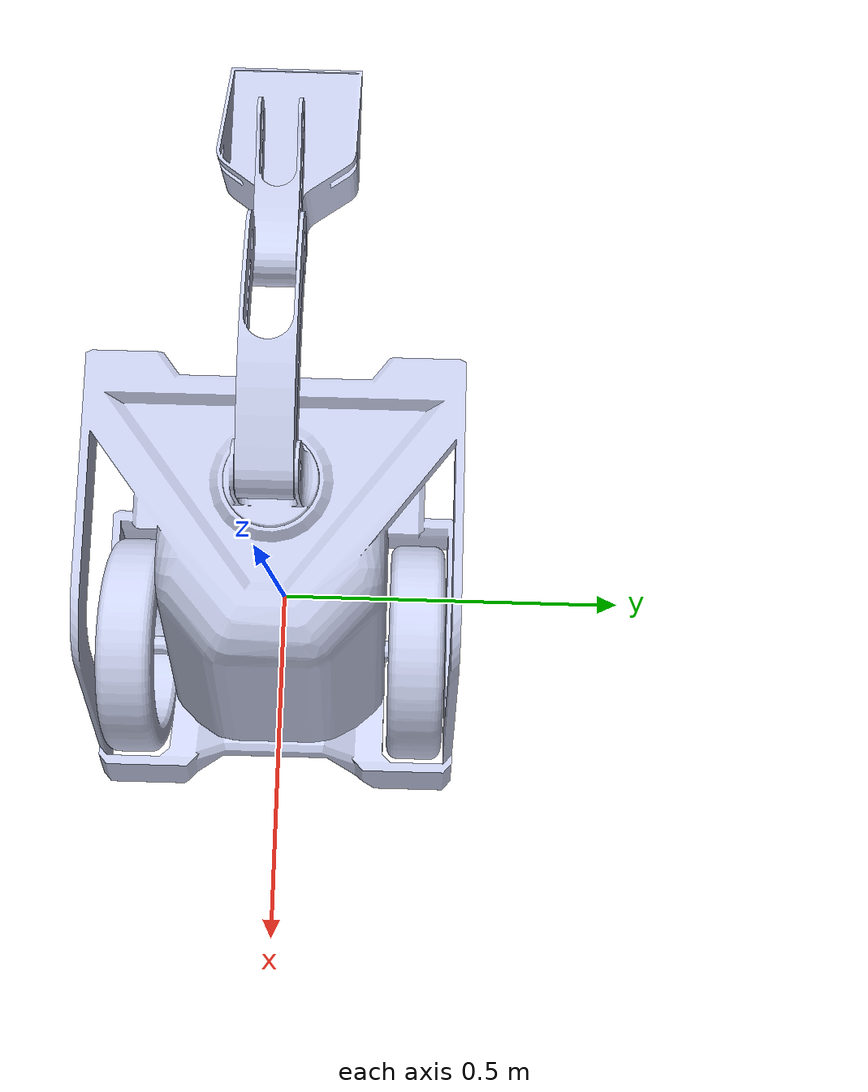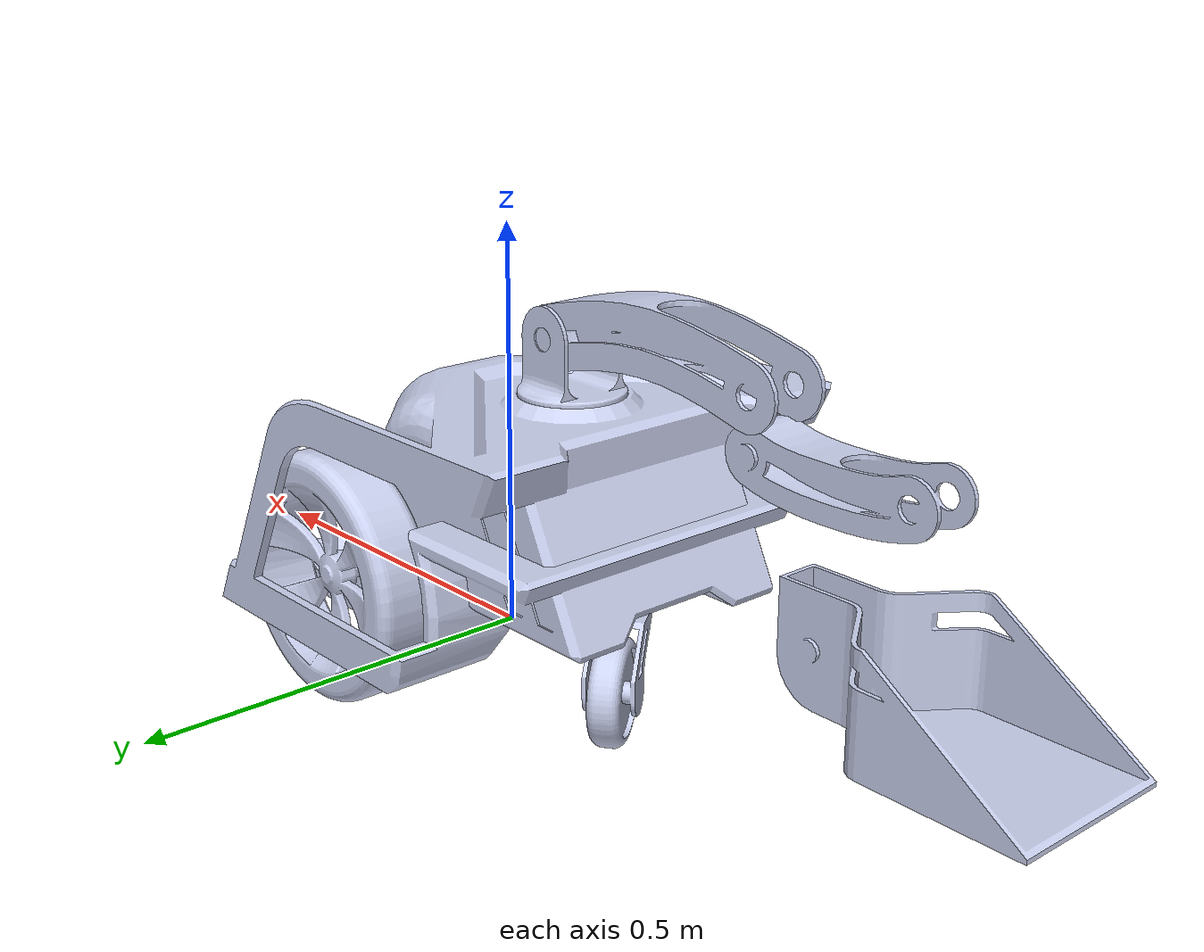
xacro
<?xml version="1.0" ?>
<robot
  name="mobilearm" xmlns:xacro="http://ros.org/wiki/xacro">

<!-- # Add this before base link -->
  <link name="dummy_link"></link>

  <link
    name="base_link">
    <inertial>
      <origin
        xyz="-0.0454480308412735 0.000582838465330818 0.177791113901499"
        rpy="0 0 0" />
      <mass
        value="34.7575387156894" />
      <inertia
        ixx="0.627751634772556"
        ixy="4.08813517851506E-05"
        ixz="0.119765812637325"
        iyy="0.784345948664716"
        iyz="-1.57075538298435E-05"
        izz="0.966494635772187" />
    </inertial>
    <visual>
      <origin
        xyz="0 0 0"
        rpy="0 0 0" />
      <geometry>
        <mesh
          filename="package://mobilearm/meshes/base_link.STL" />
      </geometry>
      <material
        name="">
        <color
          rgba="0.792156862745098 0.819607843137255 0.933333333333333 1" />
      </material>
    </visual>
    <collision>
      <origin
        xyz="0 0 0"
        rpy="0 0 0" />
      <geometry>
        <mesh
          filename="package://mobilearm/meshes/base_link.STL" />
      </geometry>
    </collision>
  </link>

<!-- # Add this after base link -->
  <joint name="dummy_joint" type="fixed">
      <origin rpy="0 0 0" xyz="0 0 0" />
      <parent link="dummy_link"/>
      <child link="base_link"/>
  </joint>

  <link
    name="fl_wheel_link">
    <inertial>
      <origin
        xyz="-0.0271807588753444 -4.14165229889463E-16 -1.31838984174237E-16"
        rpy="0 0 0" />
      <mass
        value="2.63203270429412" />
      <inertia
        ixx="0.0437698846226494"
        ixy="-2.80781157450558E-17"
        ixz="-1.18831814513634E-17"
        iyy="0.0230243622311288"
        iyz="-1.1555713157364E-18"
        izz="0.0230243622311289" />
    </inertial>
    <visual>
      <origin
        xyz="0 0 0"
        rpy="0 0 0" />
      <geometry>
        <mesh
          filename="package://mobilearm/meshes/fl_wheel_link.STL" />
      </geometry>
      <material
        name="">
        <color
          rgba="0.792156862745098 0.819607843137255 0.933333333333333 1" />
      </material>
    </visual>
    <collision>
      <origin
        xyz="0 0 0"
        rpy="0 0 0" />
      <geometry>
        <mesh
          filename="package://mobilearm/meshes/fl_wheel_link.STL" />
      </geometry>
    </collision>
  </link>
  <joint
    name="fl_wheel_joint"
    type="continuous">
    <origin
      xyz="0.085542 0.17267 0.088796"
      rpy="1.5708 0 -1.5708" />
    <parent
      link="base_link" />
    <child
      link="fl_wheel_link" />
    <axis
      xyz="-1 0 0" />
  </joint>
  <link
    name="fr_wheel_link">
    <inertial>
      <origin
        xyz="-2.42861286636753E-16 3.963843142607E-16 0.0271807588753444"
        rpy="0 0 0" />
      <mass
        value="2.63203270429411" />
      <inertia
        ixx="0.0230243622311288"
        ixy="8.23317679092403E-17"
        ixz="1.25521031584601E-17"
        iyy="0.0230243622311288"
        iyz="-2.66928154962759E-17"
        izz="0.0437698846226493" />
    </inertial>
    <visual>
      <origin
        xyz="0 0 0"
        rpy="0 0 0" />
      <geometry>
        <mesh
          filename="package://mobilearm/meshes/fr_wheel_link.STL" />
      </geometry>
      <material
        name="">
        <color
          rgba="0.792156862745098 0.819607843137255 0.933333333333333 1" />
      </material>
    </visual>
    <collision>
      <origin
        xyz="0 0 0"
        rpy="0 0 0" />
      <geometry>
        <mesh
          filename="package://mobilearm/meshes/fr_wheel_link.STL" />
      </geometry>
    </collision>
  </link>
  <joint
    name="fr_wheel_joint"
    type="continuous">
    <origin
      xyz="0.0855424170995859 -0.171498454179958 0.0887956872982283"
      rpy="1.5707963267949 0 0" />
    <parent
      link="base_link" />
    <child
      link="fr_wheel_link" />
    <axis
      xyz="0 0 1" />
  </joint>
  <link
    name="caster_steering_link">
    <inertial>
      <origin
        xyz="-0.0155539530214489 -0.050211621486083 -0.0218719177774571"
        rpy="0 0 0" />
      <mass
        value="0.104896059762262" />
      <inertia
        ixx="0.000245449516358399"
        ixy="-5.48661722963356E-05"
        ixz="-1.15978435736956E-05"
        iyy="0.000109853368900026"
        iyz="-7.71526317183975E-05"
        izz="0.00023738833462133" />
    </inertial>
    <visual>
      <origin
        xyz="0 0 0"
        rpy="0 0 0" />
      <geometry>
        <mesh
          filename="package://mobilearm/meshes/caster_steering_link.STL" />
      </geometry>
      <material
        name="">
        <color
          rgba="0.792156862745098 0.819607843137255 0.933333333333333 1" />
      </material>
    </visual>
    <collision>
      <origin
        xyz="0 0 0"
        rpy="0 0 0" />
      <geometry>
        <mesh
          filename="package://mobilearm/meshes/caster_steering_link.STL" />
      </geometry>
    </collision>
  </link>
  <joint
    name="caster_steering_joint"
    type="continuous">
    <origin
      xyz="-0.204564404538145 0.000586545820041112 0.092302154967211"
      rpy="1.5707963267949 0 0" />
    <parent
      link="base_link" />
    <child
      link="caster_steering_link" />
    <axis
      xyz="0 1 0" />
  </joint>
  <link
    name="caster_wheel_link">
    <inertial>
      <origin
        xyz="2.22044604925031E-16 6.93889390390723E-17 2.46330733588707E-16"
        rpy="0 0 0" />
      <mass
        value="0.342625566923817" />
      <inertia
        ixx="0.000635022853102609"
        ixy="-1.22660123963122E-19"
        ixz="-0.000166314971068249"
        iyy="0.000401151285704393"
        iyz="1.37432861193586E-19"
        izz="0.000519424190397995" />
    </inertial>
    <visual>
      <origin
        xyz="0 0 0"
        rpy="0 0 0" />
      <geometry>
        <mesh
          filename="package://mobilearm/meshes/caster_wheel_link.STL" />
      </geometry>
      <material
        name="">
        <color
          rgba="0.792156862745098 0.819607843137255 0.933333333333333 1" />
      </material>
    </visual>
    <collision>
      <origin
        xyz="0 0 0"
        rpy="0 0 0" />
      <geometry>
        <mesh
          filename="package://mobilearm/meshes/caster_wheel_link.STL" />
      </geometry>
    </collision>
  </link>
  <joint
    name="caster_wheel_joint"
    type="continuous">
    <origin
      xyz="-0.0281460805399568 -0.0920750000000002 -0.039578926236865"
      rpy="0 0 0" />
    <parent
      link="caster_steering_link" />
    <child
      link="caster_wheel_link" />
    <axis
      xyz="-0.814944954891572 0 0.579538368442309" />
  </joint>
  <link
    name="arm_base_link">
    <inertial>
      <origin
        xyz="-2.57835146586505E-05 0.0132552322064937 5.86643492230324E-07"
        rpy="0 0 0" />
      <mass
        value="0.306924619909659" />
      <inertia
        ixx="0.00056423275740933"
        ixy="4.77385932719403E-07"
        ixz="-2.25328189717659E-06"
        iyy="0.00062447672477494"
        iyz="-1.10419626933994E-08"
        izz="0.000464887899027737" />
    </inertial>
    <visual>
      <origin
        xyz="0 0 0"
        rpy="0 0 0" />
      <geometry>
        <mesh
          filename="package://mobilearm/meshes/arm_base_link.STL" />
      </geometry>
      <material
        name="">
        <color
          rgba="0.792156862745098 0.819607843137255 0.933333333333333 1" />
      </material>
    </visual>
    <collision>
      <origin
        xyz="0 0 0"
        rpy="0 0 0" />
      <geometry>
        <mesh
          filename="package://mobilearm/meshes/arm_base_link.STL" />
      </geometry>
    </collision>
  </link>
  <joint
    name="arm_base_joint"
    type="revolute">
    <origin
      xyz="-0.11627 0.00058655 0.31469"
      rpy="1.5708 0 0" />
    <parent
      link="base_link" />
    <child
      link="arm_base_link" />
    <axis
      xyz="0 1 0" />
    <limit
      lower="-3.14"
      upper="3.14"
      effort="10"
      velocity="100" />
  </joint>
  <link
    name="arm_shoulder_link">
    <inertial>
      <origin
        xyz="-0.106854313845036 -0.0109685060993276 0.0418021223568449"
        rpy="0 0 0" />
      <mass
        value="0.425762912929472" />
      <inertia
        ixx="0.000865085703504448"
        ixy="-0.000758214690915897"
        ixz="9.06931471576522E-05"
        iyy="0.00472008557416393"
        iyz="1.71853825871218E-05"
        izz="0.0048642302134541" />
    </inertial>
    <visual>
      <origin
        xyz="0 0 0"
        rpy="0 0 0" />
      <geometry>
        <mesh
          filename="package://mobilearm/meshes/arm_shoulder_link.STL" />
      </geometry>
      <material
        name="">
        <color
          rgba="0.792156862745098 0.819607843137255 0.933333333333333 1" />
      </material>
    </visual>
    <collision>
      <origin
        xyz="0 0 0"
        rpy="0 0 0" />
      <geometry>
        <mesh
          filename="package://mobilearm/meshes/arm_shoulder_link.STL" />
      </geometry>
    </collision>
  </link>
  <joint
    name="arm_shoulder_joint"
    type="revolute">
    <origin
      xyz="0.0003775 0.07366 -0.039389"
      rpy="0 0 0" />
    <parent
      link="arm_base_link" />
    <child
      link="arm_shoulder_link" />
    <axis
      xyz="-0.022661 0 -0.99974" />
    <limit
      lower="-3.14"
      upper="3.14"
      effort="10"
      velocity="100" />
  </joint>
  <link
    name="arm_elbow_link">
    <inertial>
      <origin
        xyz="-0.0233393800217799 -0.0661489560408209 0.0335575281983519"
        rpy="0 0 0" />
      <mass
        value="0.216274856466169" />
      <inertia
        ixx="0.00110520290130942"
        ixy="-0.000383701304411164"
        ixz="3.63584104531167E-06"
        iyy="0.00041365723025759"
        iyz="8.69725645741524E-06"
        izz="0.00126552451542636" />
    </inertial>
    <visual>
      <origin
        xyz="0 0 0"
        rpy="0 0 0" />
      <geometry>
        <mesh
          filename="package://mobilearm/meshes/arm_elbow_link.STL" />
      </geometry>
      <material
        name="">
        <color
          rgba="0.792156862745098 0.819607843137255 0.933333333333333 1" />
      </material>
    </visual>
    <collision>
      <origin
        xyz="0 0 0"
        rpy="0 0 0" />
      <geometry>
        <mesh
          filename="package://mobilearm/meshes/arm_elbow_link.STL" />
      </geometry>
    </collision>
  </link>
  <joint
    name="arm_elbow_joint"
    type="revolute">
    <origin
      xyz="-0.2973 -0.066203 0.013091"
      rpy="0 0 0" />
    <parent
      link="arm_shoulder_link" />
    <child
      link="arm_elbow_link" />
    <axis
      xyz="-0.022661 0 -0.99974" />
    <limit
      lower="-3.14"
      upper="3.14"
      effort="10"
      velocity="100" />
  </joint>
  <link
    name="arm_wrist_link">
    <inertial>
      <origin
        xyz="-0.114340241556196 0.0502692868264429 0.0305389440883377"
        rpy="0 0 0" />
      <mass
        value="0.670549259795526" />
      <inertia
        ixx="0.00428366558965856"
        ixy="0.00216312207223584"
        ixz="7.15488129621559E-05"
        iyy="0.0083495598791866"
        iyz="-4.90317863900001E-05"
        izz="0.00743855920842014" />
    </inertial>
    <visual>
      <origin
        xyz="0 0 0"
        rpy="0 0 0" />
      <geometry>
        <mesh
          filename="package://mobilearm/meshes/arm_wrist_link.STL" />
      </geometry>
      <material
        name="">
        <color
          rgba="0.792156862745098 0.819607843137255 0.933333333333333 1" />
      </material>
    </visual>
    <collision>
      <origin
        xyz="0 0 0"
        rpy="0 0 0" />
      <geometry>
        <mesh
          filename="package://mobilearm/meshes/arm_wrist_link.STL" />
      </geometry>
    </collision>
  </link>
  <joint
    name="arm_wrist_joint"
    type="revolute">
    <origin
      xyz="-0.087089 -0.18355 0.0070554"
      rpy="0 0 0" />
    <parent
      link="arm_elbow_link" />
    <child
      link="arm_wrist_link" />
    <axis
      xyz="-0.022661 0 -0.99974" />
    <limit
      lower="-3.14"
      upper="3.14"
      effort="10"
      velocity="100" />
  </joint>

  <ros2_control name="GazeboSystem" type="system">
    <hardware>
        <plugin>gazebo_ros2_control/GazeboSystem</plugin>
    </hardware>

  <!-- # Velocity Controllers -->
  <joint name="fl_wheel_joint">
      <command_interface name="velocity">
          <param name="min">-5.0</param>
          <param name="max">5.0</param>
      </command_interface>
      <state_interface name="position"/>
      <state_interface name="velocity"/>
  </joint>

  <joint name="fr_wheel_joint">
      <command_interface name="velocity">
          <param name="min">-5.0</param>
          <param name="max">5.0</param>
      </command_interface>
      <state_interface name="position"/>
      <state_interface name="velocity"/>
  </joint>

 <joint name="arm_base_joint">
      <command_interface name="velocity">
          <param name="min">-5.0</param>
          <param name="max">5.0</param>
      </command_interface>
      <state_interface name="position"/>
      <state_interface name="velocity"/>
  </joint>

  <joint name="arm_shoulder_joint">
      <command_interface name="velocity">
          <param name="min">-5.0</param>
          <param name="max">5.0</param>
      </command_interface>
      <state_interface name="position"/>
      <state_interface name="velocity"/>
  </joint>

 <joint name="arm_elbow_joint">
      <command_interface name="velocity">
          <param name="min">-5.0</param>
          <param name="max">5.0</param>
      </command_interface>
      <state_interface name="position"/>
      <state_interface name="velocity"/>
  </joint>

  <joint name="arm_wrist_joint">
      <command_interface name="velocity">
          <param name="min">-5.0</param>
          <param name="max">5.0</param>
      </command_interface>
      <state_interface name="position"/>
      <state_interface name="velocity"/>
  </joint>

 <joint name="caster_steering_joint">
      <command_interface name="velocity">
          <param name="min">-5.0</param>
          <param name="max">5.0</param>
      </command_interface>
      <state_interface name="position"/>
      <state_interface name="velocity"/>
  </joint>

  <joint name="caster_wheel_joint">
      <command_interface name="velocity">
          <param name="min">-5.0</param>
          <param name="max">5.0</param>
      </command_interface>
      <state_interface name="position"/>
      <state_interface name="velocity"/>
  </joint>

  <!-- # Position Controller -->
  <joint name="arm_base_joint">
      <command_interface name="position">
          <param name="min">-3.14</param>
          <param name="max">3.14</param>
      </command_interface>
      <state_interface name="position"/>
      <state_interface name="velocity"/>
  </joint>

  <joint name="arm_shoulder_joint">
      <command_interface name="position">
          <param name="min">-3.14</param>
          <param name="max">3.14</param>
      </command_interface>
      <state_interface name="position"/>
      <state_interface name="velocity"/>
  </joint>

  <joint name="arm_elbow_joint">
      <command_interface name="position">
          <param name="min">-3.14</param>
          <param name="max">3.14</param>
      </command_interface>
      <state_interface name="position"/>
      <state_interface name="velocity"/>
  </joint>

  <joint name="arm_wrist_joint">
      <command_interface name="position">
          <param name="min">-3.14</param>
          <param name="max">3.14</param>
      </command_interface>
      <state_interface name="position"/>
      <state_interface name="velocity"/>
  </joint>

  </ros2_control>

<gazebo>
  <plugin filename="libgazebo_ros2_control.so" name="gazebo_ros2_control">
    <parameters>$(find mobilearm)/config/control.yaml</parameters>
  </plugin>
</gazebo>

<gazebo reference="base_link">
  <sensor name="lidar" type="ray">
    <pose>0.0 0.0 0.0 0.0 0.0 0.0</pose>
    <always_on>true</always_on>
    <visualize>true</visualize>
    <update_rate>5</update_rate>
    <ray>
      <scan>
        <horizontal>
          <samples>360</samples>
          <resolution>1.00000</resolution>
          <min_angle>0.000000</min_angle>
          <max_angle>6.280000</max_angle>
        </horizontal>
      </scan>
      <range>
        <min>0.120000</min>
        <max>3.5</max>
        <resolution>0.015000</resolution>
      </range>
      <noise>
        <type>gaussian</type>
        <mean>0.0</mean>
        <stddev>0.01</stddev>
      </noise>
    </ray>
    <plugin name="scan" filename="libgazebo_ros_ray_sensor.so">
      <ros>
        <remapping>~/out:=scan</remapping>
      </ros>
      <output_type>sensor_msgs/LaserScan</output_type>
      <frame_name>lidar_link</frame_name>
    </plugin>
  </sensor>
  </gazebo>

</robot>
